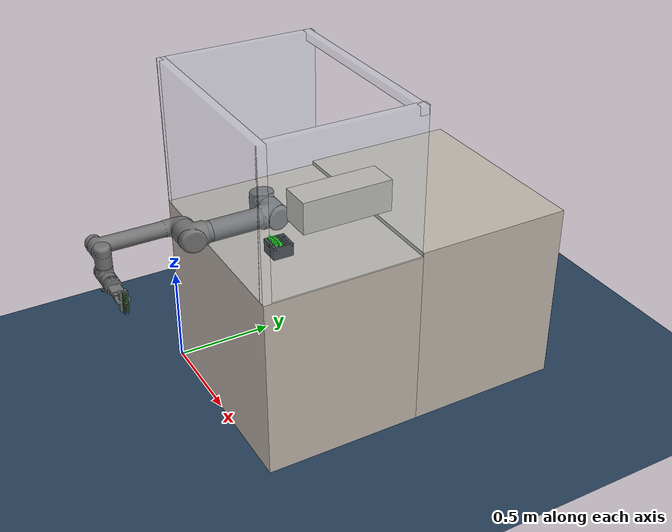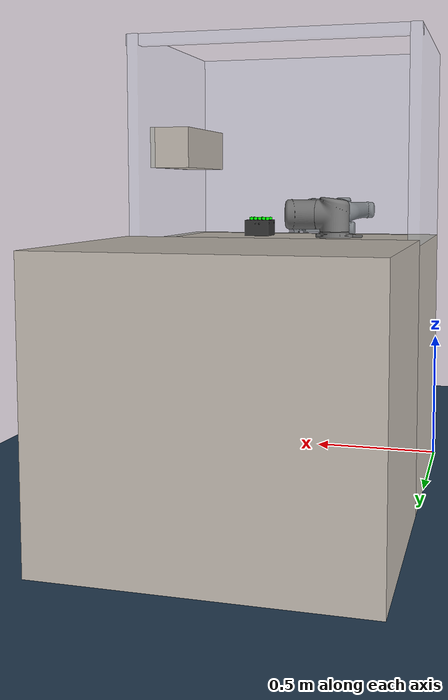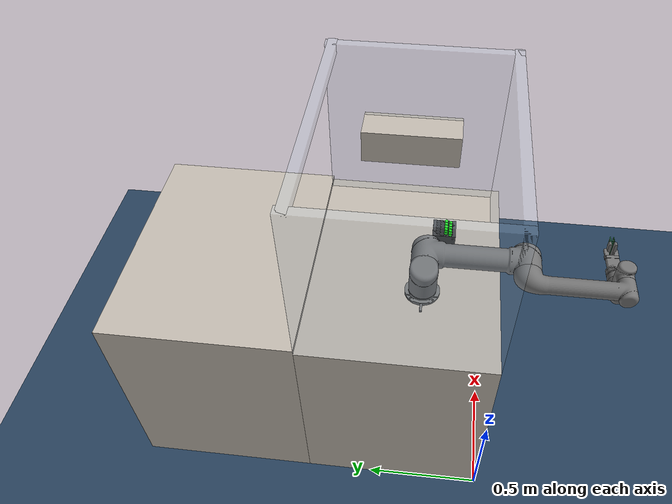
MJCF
<mujoco model="ur5gripper">
    <size memory="100000000"/>
    <compiler angle="radian"
              inertiafromgeom="true"
              texturedir="textures/"
              meshdir="mesh/visual/"/>

              <!--timestep="2e-3"
            iterations="10"
            tolerance="1e-10"
            impratio="20"-->
    <option
            integrator="implicitfast" timestep="0.002" iterations="50" tolerance="1e-4" impratio="10" cone="elliptic"/>
    <!--size njmax="600" nconmax="150" nstack="300000"/-->

    <default>
        <site rgba="0.8 0.6 0.7 0.3" type="ellipsoid" group="3"/>
        <geom contype='1' conaffinity='1' condim='4'  margin="1e-3"  /> <!--solref=".01 1" solimp=".99 .99 .01"-->
        <default class="UR5">
            <joint damping='25'/> <!--Og 65-->
        </default>
        <default class="UR5e">
            <joint damping='5'/> <!--Og 45-->
        </default>
        <default class="GRIPPER">
            <joint damping='1'/>
        </default>
        <!--From UR5e-->
        <default class="collision">
            <geom type="capsule" group="0"/>
            <default class="eef_collision">
            <geom type="cylinder"/>
            </default>
        </default>
    </default>

    <visual>
        <map fogstart="3" fogend="5" znear="0.05"/>
        <quality shadowsize="2048"/>
        <scale framelength="0.1"
               framewidth="0.005"
               contactwidth="0.1"
               contactheight="0.005"
               forcewidth="0.01"
               />
    </visual>

    <!--Assets-->
    <asset>
        <!--Meshes-->
        <mesh name="base"           file="base.stl"     />
        <mesh name="shoulder"       file="shoulder.stl" />
        <mesh name="upperarm"       file="upperarm.stl" />
        <mesh name="forearm"        file="forearm.stl"  />
        <mesh name="wrist1"         file="wrist1.stl"   />
        <mesh name="wrist2"         file="wrist2.stl"   />
        <mesh name="wrist3"         file="wrist3.stl"   />

        <mesh name="battery_mesh" file="battery.stl" scale="0.001 0.001 0.001"/>
        <mesh name="casing_mesh"  file="casing_new.stl"  scale="0.001 0.001 0.001"/>

        <!--Changed-->
        <mesh name="zimmer_gripper_adapter"    file="zimmer_gripper_adapter.stl"     scale = "0.001 0.001 0.001"/>
        <mesh name="zimmer_gripper_left"    file="zimmer_gripper_left.stl"     scale = "0.001 0.001 0.001"/>
        <mesh name="zimmer_gripper_right_new"    file="zimmer_gripper_right_new.stl"     scale = "0.001 0.001 0.001"/>

        <!--Textures-->
        <texture name="ur5_tex"     type="2d"       builtin="flat" height="32" width="32" rgb1="0.45 0.45 0.45" />
        <texture name="gripper_tex" type="2d"       builtin="flat" height="32" width="32" rgb1="0.45 0.45 0.45" rgb2="0 0 0"/>
        <texture name="bench_tex"   type="2d"       builtin="flat" height="32" width="32" rgb1="0.7 0.7 0.7" />
        <texture name="sky_tex"     type="skybox"   builtin="gradient" width="100" height="100" rgb1="1 1 1" rgb2="0.3 0.3 0.8" />
        <texture name="texgeom"     type="cube"     builtin="flat" mark="cross" width="127" height="1278" rgb1="0.8 0.6 0.4" rgb2="0.8 0.6 0.4" markrgb="1 1 1" random="0.01" />
        <texture name="floor_tex"   type="2d"        builtin="checker" rgb1=".2 .3 .4" rgb2=".1 .2 .3" width="100" height="100" />
        <texture name="wood"        type="cube"     file="wood2.png"/>
        <texture name="metal"        type="cube"     file="metal2.png"/>
        <!--Materials-->
        <material name="ur5_mat"        texture="ur5_tex"   shininess="0.9" specular="0.75" reflectance="0.3" /> <!--rgba="0.2 0.2 0.2 0.2"-->
        <material name="gripper_mat"    texture="gripper_tex"   shininess="0.9" specular="0.75" reflectance="0.4"/>
        <material name='floor_mat'      texture="floor_tex"  shininess="0.8" texrepeat="10 10" specular="0.7"  reflectance="0.5" />
        <material name='geom'           texture="texgeom"   texuniform="true" />
        <material name="bench_mat"      texture="metal"   shininess="0.1" specular="0.5" reflectance="0.2"/>
        <material name="tablecube"      texture="wood" rgba=".8 .8 .8 1"/>

        <material name="battery_mat" rgba="0 1 0 1" shininess="0.5"/>
        <material name="casing_mat"  rgba="0.2 0.2 0.2 1" shininess="0.5"/>

        <!-- IGCV   -->
        <material name="glass" rgba="0.8 0.9 1 0.15" specular="1" shininess="1" reflectance="0.3"/>
    </asset>

    <!--Contacts-->
    <contact>
        <exclude body1="base_link" body2="shoulder_link"/>
		<exclude body1="shoulder_link" body2="upper_arm_link"/>
        <exclude body1="upper_arm_link" body2="forearm_link"/>
		<exclude body1="forearm_link" body2="wrist_1_link"/>
		<exclude body1="wrist_1_link" body2="wrist_2_link"/>
        <exclude body1="wrist_2_link" body2="wrist_3_link"/>
        <exclude body1="robot_cell" body2="base_link"/>
        <exclude body1="robot_cell" body2="shoulder_link"/>
        <exclude body1="robot_cell" body2="upper_arm_link"/>
        <exclude body1="robot_cell" body2="forearm_link"/>
        <exclude body1="robot_cell" body2="wrist_1_link"/>
        <exclude body1="robot_cell" body2="wrist_2_link"/>
        <exclude body1="robot_cell" body2="wrist_3_link"/>
        <exclude body1="robot_cell" body2="ee_link"/>
        <exclude body1="robot_cell" body2="ee_gripper_left_link"/>
        <exclude body1="robot_cell" body2="ee_gripper_right_link"/>
        <exclude body1="ee_gripper_left_link" body2="ee_gripper_right_link"/>

    </contact>

    <!--MODEL DESCRIPTION-->
    <worldbody>
        <!--Lighting parameters-->
        <light name="light3" mode="targetbody" target="robot_cell" directional="true" pos="1 1 3" />
        <!--Camera parameters-->
        <!--Floor Property-->
        <geom name='floor' material="floor_mat" pos='0 0 0' size='2.5 2.5 0.1'  type='plane' />

        <site name="world_axes" pos="0 0 0" type="ellipsoid" size="0.01 0.01 0.01" rgba="0 0 0 1" />

        <!-- X-Achse (rot) -->
        <geom name="x_axis" type="capsule" fromto="0 0 0 0.2 0 0" size="0.005" rgba="1 0 0 1"/>
        <!-- Y-Achse (grün) -->
        <geom name="y_axis" type="capsule" fromto="0 0 0 0 0.2 0" size="0.005" rgba="0 1 0 1"/>
        <!-- Z-Achse (blau) -->
        <geom name="z_axis" type="capsule" fromto="0 0 0 0 0 0.2" size="0.005" rgba="0 0 1 1"/>

        <body name="robot_cell" pos="0 0 0">

            <!-- Tischplatte -->
            <geom name="table_block" type="box" size="0.525 0.40 0.465" pos="0.525 0.40 0.465" contype="1" conaffinity="1" material="bench_mat" />
            <geom name="table_block_2" type="box" size="0.525 0.40 0.475" pos="0.525 1.20 0.475" contype="1" conaffinity="1" material="bench_mat" />
            <!-- Wand links (x = -0.02 + 0.02) = 0.02 -->
            <geom name="wall_left" type="box" size="0.02 0.40 0.37" pos="0.02 0.40 1.3" contype="1" conaffinity="1" material="glass"/>
            <!-- Wand rechts (x = 1.042 - 0.02 = 1.022) -->
            <geom name="wall_right" type="box" size="0.02 0.40 0.37" pos="1.022 0.40 1.3" contype="1" conaffinity="1" material="glass"/>
            <!-- Wand vorne (y = -0.02 + 0.02 = 0.02) -->
            <geom name="wall_front" type="box" size="0.525 0.02 0.37" pos="0.525 0.02 1.3" contype="1" conaffinity="1" material="glass"/>
            <!-- Decke -->
            <geom name="ceiling" type="box" size="0.525 0.02 0.02" pos="0.525 0.772 1.65" contype="1" conaffinity="1" material="glass"/>
            <!--GreiferFach-->
            <geom name="gripper_shelf" type="box" size="0.075 0.215 0.075" pos="0.945 0.425 1.275" contype="1" conaffinity="1" material="bench_mat"/>

            <inertial pos="0 0 0" mass="1000" diaginertia="0 0 0" />
            <body name="base_link" pos="0.3755 0.325 0.93" quat="-1 0 0 1" >
                <inertial pos="0 0 0" quat="0.5 0.5 -0.5 0.5" mass="4" diaginertia="0.0072 0.00443333 0.00443333" />
                <geom type="mesh"  mesh="base" material="ur5_mat"/>

                <body name="shoulder_link" pos="0 0 0.089159" >
                    <inertial pos="0 0 0" mass="3.7" diaginertia="0.0102675 0.0102675 0.00666" />
                    <joint name="shoulder_pan_joint" class="UR5" pos="0 0 0" axis="0 0 1" limited="true" range="-6.28318 6.28318" />
                    <geom name="shoulder_geom" type="mesh"  mesh="shoulder" material="ur5_mat"/>

                    <body name="upper_arm_link" pos="0 0.13585 0" quat="0.707107 0 0.707107 0">
                        <inertial pos="0 0 0.28" mass="8.393" diaginertia="0.226891 0.226891 0.0151074" />
                        <joint name="shoulder_lift_joint" class="UR5" pos="0 0 0" axis="0 1 0" limited="true" range="-6.28318 6.28318" /> <!--Range= -6.28318 6.28318-->
                        <geom name="upperarm_geom" type="mesh"  mesh="upperarm" material="ur5_mat" />

                        <body name="forearm_link" pos="0 -0.1197 0.425">
                            <inertial pos="0 0 0.25" mass="2.275" diaginertia="0.0494433 0.0494433 0.004095" />
                            <joint name="elbow_joint" class="UR5" pos="0 0 0" axis="0 1 0" limited="true" range="-6.28318 6.28318" /> <!--Range= -6.28318 6.28318-->
                            <geom name="forearm_geom" type="mesh"  mesh="forearm" material="ur5_mat"/>

                            <body name="wrist_1_link" pos="0 0 0.39225" quat="0.707107 0 0.707107 0">
                                <inertial pos="0 0 0" quat="0.5 0.5 -0.5 0.5" mass="1.219" diaginertia="0.21942 0.111173 0.111173" />
                                <joint name="wrist_1_joint" class="UR5e" pos="0 0 0" axis="0 1 0" limited="true" range="-6.28318 6.28318" />
                                <geom name="wrist_1_geom" type="mesh"  mesh="wrist1" material="ur5_mat"/>

                                <body name="wrist_2_link" pos="0 0.093 0" >
                                    <inertial pos="0 0 0" quat="0.5 0.5 -0.5 0.5" mass="1.219" diaginertia="0.21942 0.111173 0.111173" />
                                    <joint name="wrist_2_joint" class="UR5e" pos="0 0 0" axis="0 0 1" limited="true" range="-6.28318 6.28318" /> <!--Range= -6.28318 6.28318-->
                                    <geom name="wrist_2_geom" type="mesh"  mesh="wrist2" material="ur5_mat"/>

                                    <body name="wrist_3_link" pos="0 0 0.09465" ><!-- quat="0.707107 0 0.707107 0"-->
                                        <inertial pos="0 0 0" quat="0.5 0.5 -0.5 0.5" mass="0.1879" diaginertia="0.033822 0.0171365 0.0171365" />
                                        <joint name="wrist_3_joint" class="UR5e" pos="0 0 0" axis="0 1 0" limited="true" range="-6.28318 6.28318" />
                                        <geom name="wrist_3_geom" type="mesh"  mesh="wrist3" material="ur5_mat"/>

                                        <!--Changed-->
                                        <body name="ee_link" pos="0 0.08 0" quat="0.5 0.5 -0.54 0.5">
                                            <inertial pos="-0.01 0 0" mass="0.001" diaginertia="1.66667e-08 1.66667e-08 1.66667e-08" />
                                            <geom name="ee_adapter_geom" type="mesh"  mesh="zimmer_gripper_adapter" material="ur5_mat"/>

                                            <body name="ee_gripper_left_link" pos="0.0005 -0.00565 0" quat="1 0 0 0">
                                                <inertial pos="-0.01 0 0" mass="0.01" diaginertia="1.66e-08 1.66e-08 1.66e-08" />

                                                <joint name="ee_gripper_left_joint" type="slide" axis="0 1 0" limited="true" range="-0.006 0.00825" />

                                                <geom name="ee_left_visual" type="mesh" mesh="zimmer_gripper_left" material="ur5_mat" contype="0" conaffinity="0" group="1"/>

                                                <geom name="ee_left_col" type="box" size="0.05 0.001 0.015" pos="-0.005 0.017 -0.17"
                                                    rgba="0 1 0 0.25" group="0" friction="10 0.05 0.01" solref="0.004 1" solimp="0.9 0.95 0.001" condim="4" priority="100"/>

                                                <site name="pinch_L" pos="-0.005 0.018 -0.170" size="0.002" type="sphere" rgba="0 1 1 1"/>

                                                <geom name="ee_left_pad" type="box" pos="-0.005 0.018 -0.170" size="0.02 0.002 0.015" rgba="1 1 0 0.3" group="3"
                                                  friction="10 0.05 0.01" solref="0.004 1" solimp="0.9 0.95 0.001" condim="4" margin="0" contype="1" conaffinity="1" priority="100"/>
                                            </body>

                                            <body name="ee_gripper_right_link" pos="-0.0005 0.00575 0" quat="1 0 0 0">
                                                <inertial pos="0.01 0 0" mass="0.01" diaginertia="1.66e-08 1.66e-08 1.66e-08" />

                                                <joint name="ee_gripper_right_joint" type="slide" axis="0 1 0" limited="true" range="-0.00825 0.006" />

                                                <geom name="ee_right_visual" type="mesh" mesh="zimmer_gripper_right_new" material="ur5_mat" contype="0" conaffinity="0" group="1"/>

                                                <geom name="ee_right_col" type="box" size="0.05 0.001 0.015" pos="-0.005 -0.009 -0.17"
                                                    rgba="0 1 0 0.25" group="0"  friction="10 0.05 0.01" solref="0.004 1" solimp="0.9 0.95 0.001" condim="4" priority="100"/>

                                                <site name="pinch_R" pos="-0.005 -0.010 -0.170" size="0.002" type="sphere" rgba="0 1 1 1"/>

                                                <geom name="ee_right_pad" type="box" pos="-0.005 -0.010 -0.170" size="0.02 0.002 0.015" rgba="1 1 0 0.3" group="3"
                                                   friction="10 0.05 0.01" solref="0.004 1" solimp="0.9 0.95 0.001" condim="4" margin="0" contype="1" conaffinity="1" priority="100"/>
                                            </body>

                                            <body name="tcp" pos="-0.005 0.004 -0.185" quat="1 0 0 0">
                                                <geom name="tcp_visual" type="sphere" size="0.002" rgba="1 0 0 1" contype="0" conaffinity="0"/>
                                            </body>

                                            <site name="tcp_tip" pos="-0.005 0.004 -0.185" type="sphere" size="0.001" rgba="1 0.5 0 1"/>

                                        </body>
                                    </body>
                                </body>
                            </body>
                        </body>
                    </body>
                </body>
            </body>
        </body>

        <body name="casing" pos="0.7 0.25 0.957" euler="0 0 1.57">
            <!-- keep mesh visual only -->
            <geom type="mesh" mesh="casing_mesh" material="casing_mat"
                contype="0" conaffinity="0" group="1"/>

            <!-- Support ledge at the groove height -->
            <geom name="battery_support"
                type="box"
                pos="0 0 -0.0060"
                size="0.05 0.07 0.003"
                rgba="1 0 0 0"
                contype="1" conaffinity="1"
                condim="4" friction="2 0.01 0.001"/>

            <!-- FLOOR (make it thick enough to catch the battery) -->
            <geom name="casing_floor" type="box"
                size="0.05 0.07 0.01" pos="0 0 -0.02"
                rgba="1 0 0 0"
                contype="1" conaffinity="1"
                condim="4" friction="2 0.01 0.001"/>

            <!-- Rails -->
            <geom name="rail_posY" type="box" size="0.05 0.005 0.02" pos="0 0.075 0"
                    rgba="1 0 0 0" contype="1" conaffinity="1" condim="4" friction="2 0.01 0.001"/>
            <geom name="rail_negY" type="box" size="0.05 0.005 0.02" pos="0 -0.075 0"
                    rgba="1 0 0 0" contype="1" conaffinity="1" condim="4" friction="2 0.01 0.001"/>

            <!-- Side walls -->
            <geom name="wall_posX" type="box" size="0.005 0.07 0.02" pos="0.055 0 0"
                    rgba="1 0 0 0" contype="1" conaffinity="1" condim="4" friction="2 0.01 0.001"/>
            <geom name="wall_negX" type="box" size="0.005 0.07 0.02" pos="-0.055 0 0"
                    rgba="1 0 0 0" contype="1" conaffinity="1" condim="4" friction="2 0.01 0.001"/>

        </body>

        <body name="battery" pos="0.696 0.224 0.9795" euler="0 0 1.57"> <freejoint/>
                <geom type="mesh" mesh="battery_mesh" material="battery_mat" contype="0" conaffinity="0" group="1" mass="0.0"/>
                <geom type="box" size="0.00725 0.04125 0.0255" condim="4" friction="2 0.005 0.0001" rgba="0 0 0 0"
                    solimp="0.9 0.95 0.001" solref="0.02 1" margin="0" contype="1" conaffinity="1"/>
        </body>

        <body name="battery2" pos="0.703 0.2425 0.9795" euler="0 0 1.57"> <freejoint/>
                <geom type="mesh" mesh="battery_mesh" material="battery_mat" contype="0" conaffinity="0" group="1" mass="0.0"/>
                <geom type="box" size="0.00725 0.04125 0.0255" condim="4" friction="2 0.005 0.0001" rgba="0 0 0 0"
                    solimp="0.9 0.95 0.001" solref="0.02 1" margin="0" contype="1" conaffinity="1"/>
        </body>

    </worldbody>

    <!--ACTUATORS-->
    <actuator>
        <!--UR5-->
        <position name='shoulder_pan' ctrllimited="true" ctrlrange="-6.28318 6.28318" joint='shoulder_pan_joint' kp="2000" kv="100" forcerange="-150 150"/> <!--kp500-->
        <position name='shoulder_lift' ctrllimited="true" ctrlrange="-6.28318 6.28318" joint='shoulder_lift_joint' kp="2000" kv="100" forcerange="-150 150"/><!--kp500-->
        <position name='forearm' ctrllimited="true" ctrlrange="-6.28318 6.28318" joint='elbow_joint' kp="2000" kv="100" forcerange="-150 150" /><!--kp500-->
        <position name='wrist_1' ctrllimited="true" ctrlrange="-6.28318 6.28318" joint='wrist_1_joint' kp="500" kv="25" forcerange="-28 28" /><!--kp100-->
        <position name='wrist_2' ctrllimited="true" ctrlrange="-6.28318 6.28318" joint='wrist_2_joint' kp="500" kv="25" forcerange="-28 28"/><!--kp100-->
        <position name='wrist_3' ctrllimited="true" ctrlrange="-6.28318 6.28318" joint='wrist_3_joint' kp="500" kv="25" forcerange="-28 28"/><!--kp100-->

        <!--Gripper-->
        <position name='ee_gripper_left' ctrllimited="true" ctrlrange="-0.006 0.00825" joint='ee_gripper_left_joint' kp="1000" kv="25" forcerange="-100 100"/><!--kp100-->
        <position name='ee_gripper_right' ctrllimited="true" ctrlrange="-0.00825 0.006" joint='ee_gripper_right_joint' kp="1000" kv="25" forcerange="-100 100"/><!--kp100-->

        <adhesion name="magnet_left"  body="ee_gripper_left_link"  ctrlrange="0 1" gain="500" />
        <adhesion name="magnet_right" body="ee_gripper_right_link" ctrlrange="0 1" gain="500" />
    </actuator>

    <equality>
        <weld name="grip_weld" body1="ee_link" body2="battery" active="false"/>
    </equality>

</mujoco>
